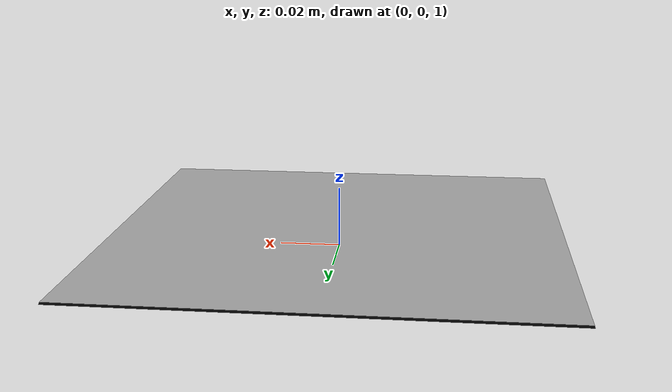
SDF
<?xml version="1.0"?>
<sdf version="1.6">
  <model name="aruco_300">
    <pose>0 0 1.0055 0 0 0</pose>  <!-- Elevacion de un metro-->
    <static>true</static>
    <link name="link">

      <!-- Visualización del modelo -->
      <visual name="visual">
        <geometry>
          <mesh>
            <uri>model://aruco_300/meshes/aruco_15_x_15.dae</uri>
            <scale>1 1 1</scale>
          </mesh>
        </geometry>
      </visual>

      <!-- Colisión usando el mismo modelo DAE -->

    </link>
  </model>
</sdf>
